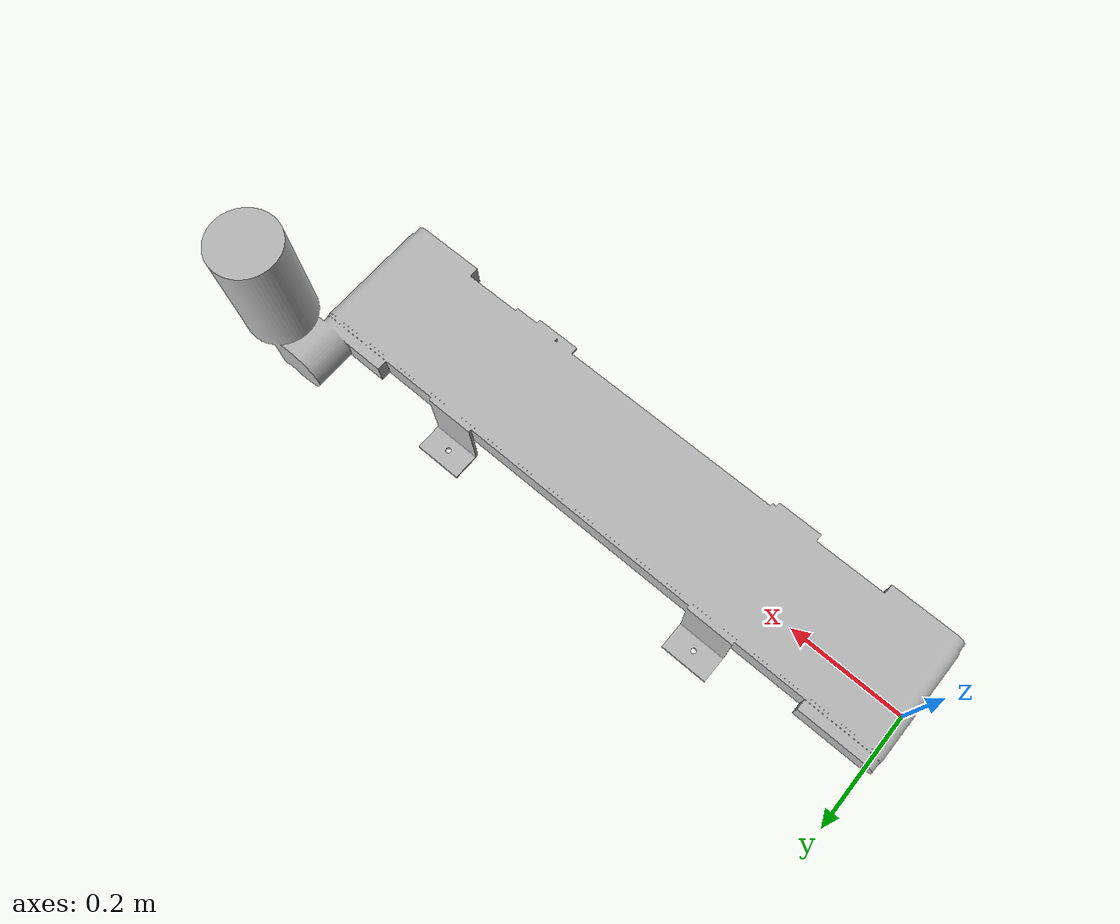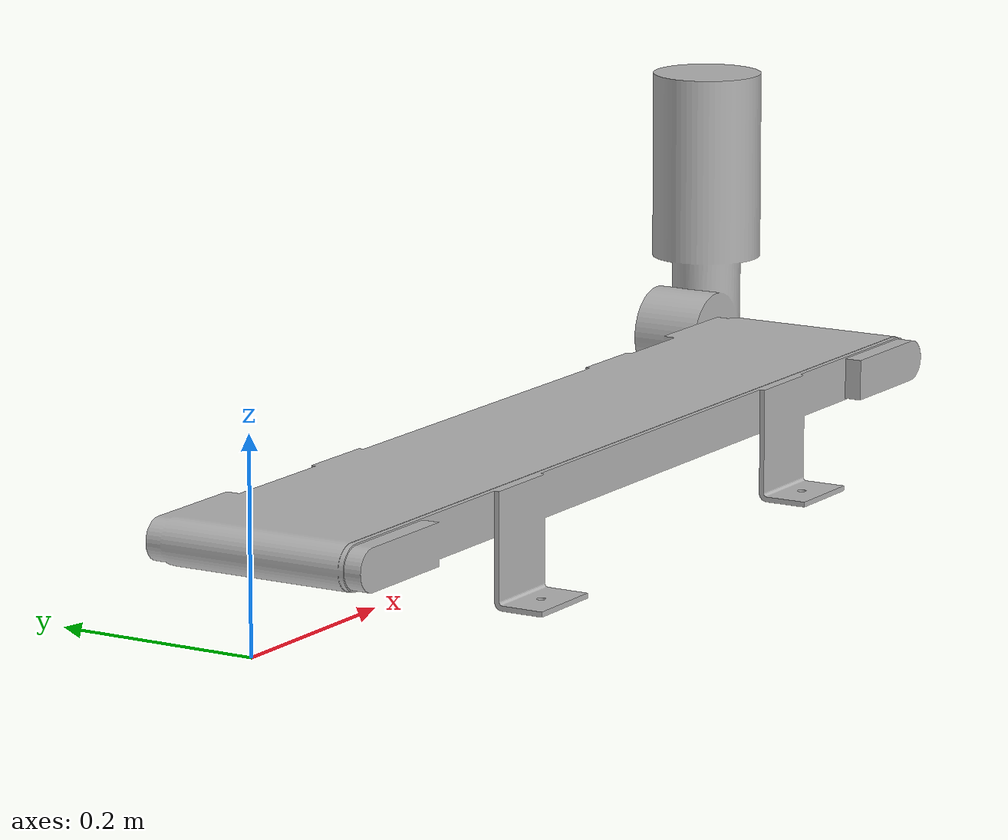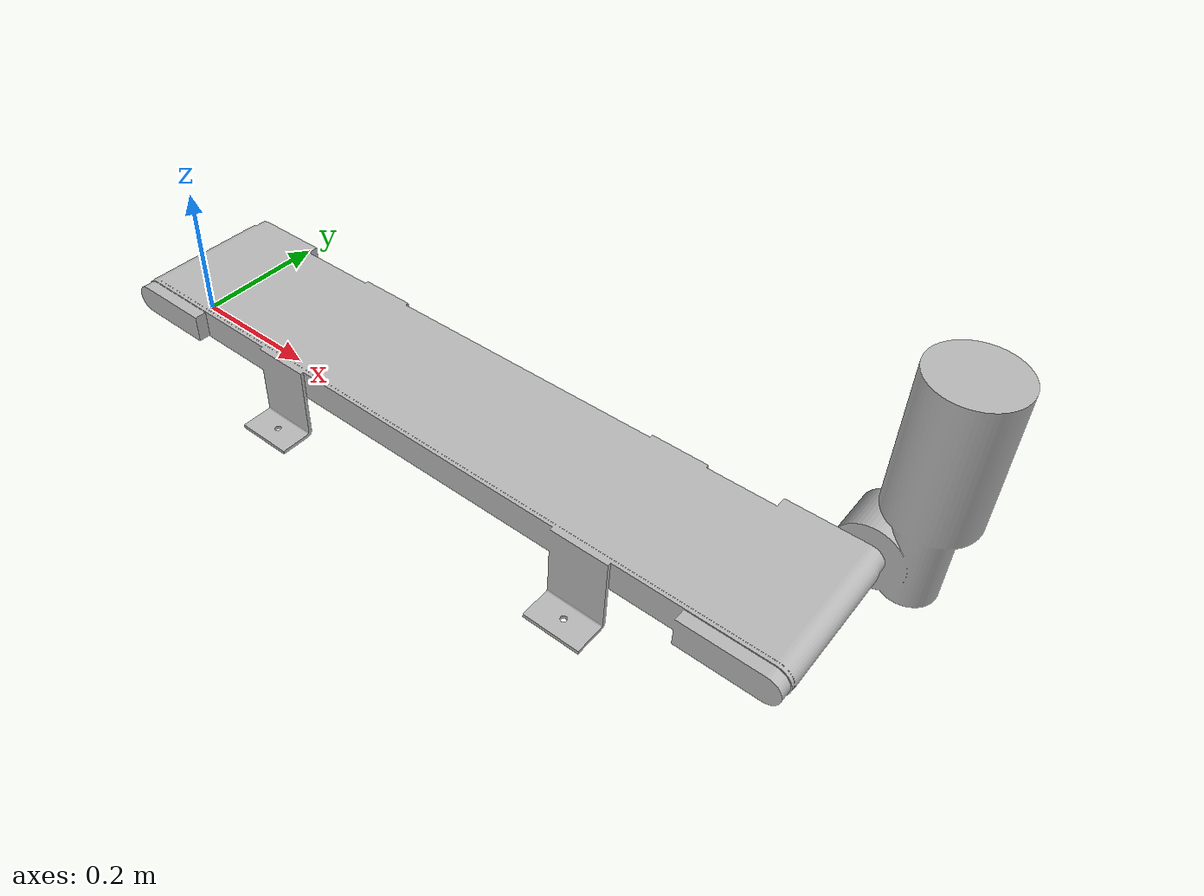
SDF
<?xml version="1.0" ?>
<sdf version="1.4">
  <model name="Conveyor_Belt_270degree">
    <static>true</static>
    <link name="link">
      <pose>0 0 0 0 0 0</pose>
      <collision name="collision">
        <geometry>
          <mesh>
            <uri>model://Conveyor_Belt_270degree/meshes/conveyor_belt_270degree.dae</uri>
          </mesh>
        </geometry>
      </collision>
      <visual name="visual">
        <geometry>
          <mesh>
            <uri>model://Conveyor_Belt_270degree/meshes/conveyor_belt_270degree.dae</uri>
          </mesh>
        </geometry>
      </visual>
    </link>
  </model>
</sdf>
